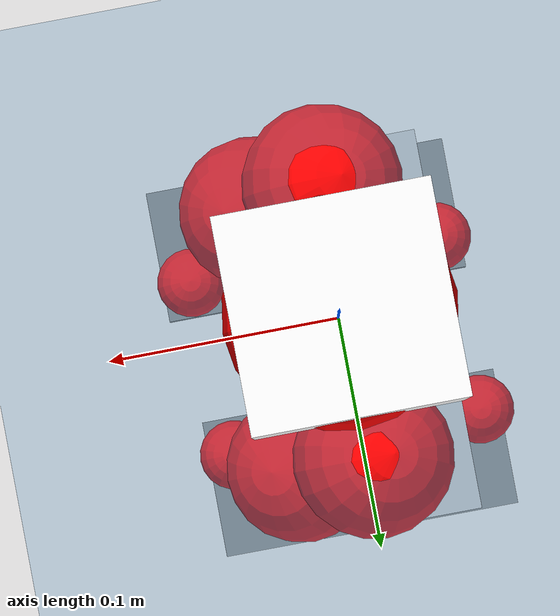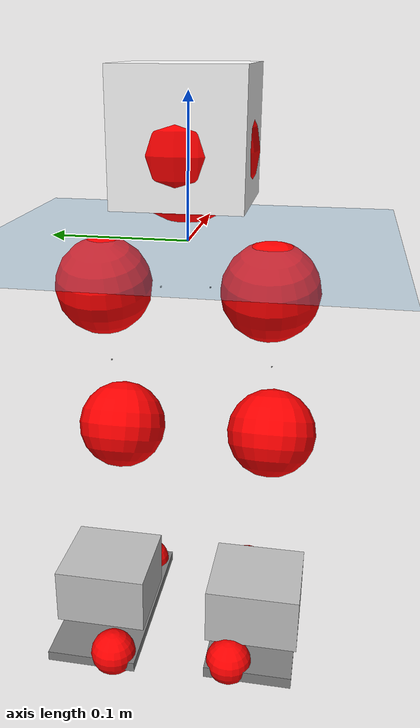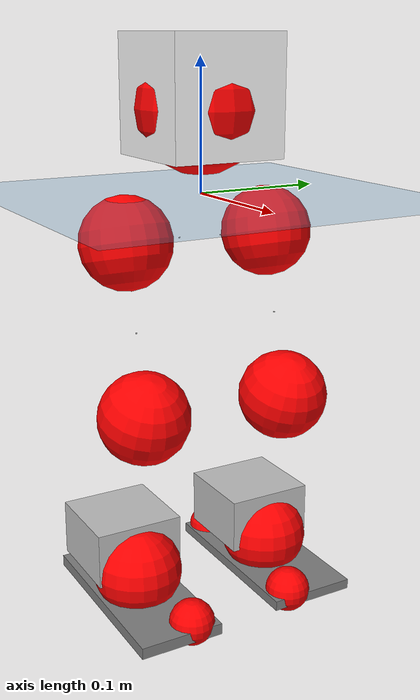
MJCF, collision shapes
<mujoco model="pi_12dof_release_v1">
  <compiler angle="radian" assetdir="assets" balanceinertia="true" inertiafromgeom="false"/>

  <option timestep="0.005" density="1.2" viscosity="2e-05"/>

  <size nkey="1"/>

  <visual>
    <quality shadowsize="8192"/>
    <map shadowclip="0.5"/>
  </visual>

  <default>
    <default class="/">
      <joint armature="0.01" damping="0.01" frictionloss="0.01"/>
      <geom contype="0" conaffinity="0" group="1" solref="-1000 -80"/>
      <site size="0.01 0.005 0.005" group="5"/>
      <general forcelimited="true" biastype="affine" gainprm="20" biasprm="0 -20 -0.5"/>
      <default class="foot">
        <geom size="0.0845 0.036 0.005" type="box" condim="6" group="4" priority="1" friction="0.9 0.2 0.2" solimp="0.015 1 0.005"/>
      </default>
      <default class="reward_collision_sphere">
        <geom group="5" rgba="1 0 0 1"/>
      </default>
    </default>
  </default>

  <asset>
    <texture type="skybox" colorspace="auto" name="//unnamed_texture_0" builtin="gradient" rgb1="0.95 0.95 0.95" rgb2="0.95 0.95 0.95" width="100" height="600"/>
    <texture type="2d" colorspace="auto" name="texplane" builtin="checker" rgb1="0.345 0.575 0.748" rgb2="0.345 0.575 0.748" markrgb="1 1 1" width="512" height="512"/>
    <material name="MatPlane" class="/" texture="texplane" texuniform="true" texrepeat="2 2" specular="0.9"/>
    <mesh name="baselink_1" class="/" file="baselink_1.STL"/>
    <mesh name="r_hip_pitch_link" class="/" file="r_hip_pitch_link.STL"/>
    <mesh name="r_hip_roll_link" class="/" file="r_hip_roll_link.STL"/>
    <mesh name="r_thigh_link" class="/" file="r_thigh_link.STL"/>
    <mesh name="r_calf_link" class="/" file="r_calf_link.STL"/>
    <mesh name="r_ankle_pitch_link" class="/" file="r_ankle_pitch_link.STL"/>
    <mesh name="r_ankle_roll_link" class="/" file="r_ankle_roll_link.STL"/>
    <mesh name="l_hip_pitch_link" class="/" file="l_hip_pitch_link.STL"/>
    <mesh name="l_hip_roll_link" class="/" file="l_hip_roll_link.STL"/>
    <mesh name="l_thigh_link" class="/" file="l_thigh_link.STL"/>
    <mesh name="l_calf_link" class="/" file="l_calf_link.STL"/>
    <mesh name="l_ankle_pitch_link" class="/" file="l_ankle_pitch_link.STL"/>
    <mesh name="l_ankle_roll_link" class="/" file="l_ankle_roll_link.STL"/>
  </asset>

  <worldbody>
    <geom name="floor" class="/" size="100 100 0.125" type="plane" group="0" material="MatPlane"/>
    <light name="toplight_shadow" class="/" pos="0 0 5" dir="0.0990148 0.0990148 -0.990148" type="directional" ambient="0.04 0.04 0.04" diffuse="0.55 0.55 0.55" specular="0.12 0.12 0.12"/>
    <light name="toplight_fill" class="/" pos="0 0 5" dir="0.0990148 0.0990148 -0.990148" type="directional" castshadow="false" ambient="0.04 0.04 0.04" diffuse="0.3 0.3 0.3" specular="0.08 0.08 0.08"/>
    <body name="trunk" pos="-0.000361323 0.000201155 -0.00224797" quat="1 0.00029771 4.96875e-05 0.000125953">
      <inertial pos="-0.000389886 -0.00338822 0.0382262" quat="0.695104 0.00908107 0.0101605 0.71878" mass="1.54955" diaginertia="0.00822166 0.00296574 0.00303861"/>
      <joint name="//unnamed_joint_0" type="free"/>
      <geom name="//unnamed_geom_1" class="/" type="mesh" density="0" rgba="1 1 1 1" mesh="baselink_1"/>
      <geom name="//unnamed_geom_2" class="/" size="0.044737 0.044737 0.044737" pos="0 0 0.074521" type="box" rgba="1 1 1 1"/>
      <geom name="//unnamed_geom_3" class="reward_collision_sphere" size="0.0492107" pos="0 0 0.0652059"/>
      <site name="imu" class="/" pos="-0.0127601 0.0045474 0.0137963" size="0.00894739"/>
      <camera name="track" class="/" pos="0 -1.59029 0" quat="0.707107 0.707107 0 0" mode="trackcom"/>
      <camera name="ego_camera" class="/" pos="0.0718168 0 0.167672" quat="-0.5 -0.5 0.5 0.5"/>
      <body name="r_hip_pitch_link" pos="-0.00231597 -0.0172157 -0.0301897" quat="0.992271 -0.000409755 -0.12409 0.000313519">
        <inertial pos="0.00373966 -0.0461598 -5.5865e-05" quat="-0.0123105 0.7053 -0.033454 0.708013" mass="0.254474" diaginertia="8.3932e-05 3.0863e-05 5.7668e-05"/>
        <joint name="r_hip_pitch_joint" class="/" pos="0 0 0" axis="0.00706958 -0.999945 -0.00777025" stiffness="0.0105258" range="-1.74765 1.19505" armature="0.00867956" damping="0.000516079" frictionloss="0.00903242"/>
        <geom name="//unnamed_geom_4" class="/" type="mesh" density="0" rgba="0.75294 0.75294 0.75294 1" mesh="r_hip_pitch_link"/>
        <geom name="//unnamed_geom_5" class="/" size="0.00044737 0.00044737 0.00044737" type="box" rgba="0.75294 0.75294 0.75294 1"/>
        <body name="r_hip_roll_link" pos="-0.00187347 -0.0435601 0.000115715" quat="1 6.13536e-06 -5.06953e-05 9.97283e-05">
          <inertial pos="-0.000359116 -0.000419839 -0.0543446" quat="0.706148 -0.0813732 -0.0797005 0.698843" mass="0.284674" diaginertia="0.000259893 8.83494e-05 9.13213e-05"/>
          <joint name="r_hip_roll_joint" class="/" pos="0 0 0" axis="-0.99993 0.0114055 -0.00308861" stiffness="0.000998686" range="-0.17575 0.494551" armature="0.00873018" damping="0.010897" frictionloss="0.0100314"/>
          <geom name="//unnamed_geom_6" class="/" type="mesh" density="0" rgba="0.75294 0.75294 0.75294 1" mesh="r_hip_roll_link"/>
          <geom name="//unnamed_geom_7" class="/" size="0.00044737 0.00044737 0.00044737" type="box" rgba="0.75294 0.75294 0.75294 1"/>
          <geom name="//unnamed_geom_8" class="reward_collision_sphere" size="0.0357896"/>
          <body name="r_thigh_link" pos="0.00239138 -0.00202895 -0.0668803" quat="0.999999 2.44814e-05 0.000968912 -0.000763787">
            <inertial pos="0.00103696 0.00126114 -0.0433911" quat="0.739364 0.6733 -0.00285841 -0.00051205" mass="0.0789319" diaginertia="9.86935e-05 2.99118e-05 4.04414e-05"/>
            <joint name="r_thigh_joint" class="/" pos="0 0 0" axis="-0.0117263 -0.00544447 -0.999916" stiffness="0.00110743" range="-0.303667 0.588083" armature="0.00875949" damping="0.000833413" frictionloss="0.0084868"/>
            <geom name="//unnamed_geom_9" class="/" type="mesh" density="0" rgba="0.75294 0.75294 0.75294 1" mesh="r_thigh_link"/>
            <geom name="//unnamed_geom_10" class="/" size="0.00044737 0.00044737 0.00044737" type="box" rgba="0.75294 0.75294 0.75294 1"/>
            <body name="r_calf_link" pos="-0.00236485 -0.00125451 -0.063992" quat="0.947613 0.000144548 0.319421 3.556e-05">
              <inertial pos="0.00237603 -0.000912648 -0.0649467" quat="0.99998 -0.0048924 -0.00061379 0.00400318" mass="0.603099" diaginertia="0.00287891 0.00116008 0.00012558"/>
              <joint name="r_calf_joint" class="/" pos="0 0 0" axis="0.000758767 -0.999979 -0.00648477" range="-1.64616 0.676392" armature="0.00802667" damping="0.0181633" frictionloss="0.00849798"/>
              <geom name="//unnamed_geom_11" class="/" type="mesh" density="0" rgba="0.75294 0.75294 0.75294 1" mesh="r_calf_link"/>
              <geom name="//unnamed_geom_12" class="/" size="0.00044737 0.00044737 0.00044737" type="box" rgba="0.75294 0.75294 0.75294 1"/>
              <geom name="//unnamed_geom_13" class="reward_collision_sphere" size="0.0357896"/>
              <body name="r_ankle_pitch_link" pos="-0.000144005 0.00267813 -0.131651" quat="0.980078 1.92456e-05 -0.198612 -0.000197768">
                <inertial pos="0.00467462 0.00180086 0.000141627" quat="0.00580954 0.714205 0.0063113 0.699884" mass="0.117885" diaginertia="0.000238605 6.99237e-05 8.21964e-05"/>
                <joint name="r_ankle_pitch_joint" class="/" pos="0 0 0" axis="-0.00442097 -0.999988 0.00215911" range="-1.2786 0.47845" armature="0.0094137" damping="0" frictionloss="0.00888798"/>
                <geom name="//unnamed_geom_14" class="/" type="mesh" density="0" rgba="0.75294 0.75294 0.75294 1" mesh="r_ankle_pitch_link"/>
                <geom name="//unnamed_geom_15" class="/" size="0.0348948 0.0357896 0.0223685" type="box" rgba="0.75294 0.75294 0.75294 1"/>
                <body name="r_ankle_roll_link" pos="0.0764678 0.000263554 0.00061984" quat="1 6.51407e-05 -8.9485e-06 -4.33019e-05">
                  <inertial pos="-0.0228343 -0.000324036 -0.0107717" quat="0.555544 0.42717 0.436327 0.564371" mass="0.375823" diaginertia="0.000880603 0.000316768 0.000199012"/>
                  <joint name="r_ankle_roll_joint" class="/" pos="0 0 0" axis="-1 -0.000122507 6.73154e-05" range="-0.19465 0.157539" armature="0.00884876" damping="0" frictionloss="0.0101733"/>
                  <geom name="//unnamed_geom_16" class="/" type="mesh" density="0" rgba="0.75294 0.75294 0.75294 1" mesh="r_ankle_roll_link"/>
                  <geom name="//unnamed_geom_17" class="/" type="mesh" rgba="0.75294 0.75294 0.75294 1" mesh="r_ankle_roll_link"/>
                  <geom name="right_foot" class="foot" size="0.0780922 0.0338465 0.00455915" pos="-0.0488354 0 -0.0409866"/>
                  <geom name="//unnamed_geom_19" class="reward_collision_sphere" size="0.0357896" pos="-0.0478779 0 -0.0186303"/>
                  <geom name="//unnamed_geom_20" class="reward_collision_sphere" size="0.0178948" pos="0.0143634 0.0159029 -0.0372605"/>
                  <geom name="//unnamed_geom_21" class="reward_collision_sphere" size="0.0178948" pos="-0.114907 0.0159029 -0.0372605"/>
                  <site name="right_foot" class="foot" pos="-0.0488354 0 -0.0409866" size="0.00894739"/>
                </body>
              </body>
            </body>
          </body>
        </body>
      </body>
      <body name="l_hip_pitch_link" pos="-0.00259936 0.0189096 -0.0314648" quat="0.992222 2.0473e-05 -0.124485 -4.32585e-05">
        <inertial pos="0.00175982 0.0454098 0.000293146" quat="-0.0316102 0.709474 0.027465 0.703486" mass="0.277943" diaginertia="0.000100044 3.33349e-05 6.5878e-05"/>
        <joint name="l_hip_pitch_joint" class="/" pos="0 0 0" axis="-0.00792911 0.999938 0.00783669" range="-1.30299 1.72674" armature="0.0101376" damping="0.00191643" frictionloss="0.00942702"/>
        <geom name="//unnamed_geom_22" class="/" type="mesh" density="0" rgba="0.75294 0.75294 0.75294 1" mesh="l_hip_pitch_link"/>
        <geom name="//unnamed_geom_23" class="/" size="0.00044737 0.00044737 0.00044737" type="box" rgba="0.75294 0.75294 0.75294 1"/>
        <body name="l_hip_roll_link" pos="-0.00154406 0.0424027 -0.000401614" quat="1 0.000202393 -0.00011674 -1.39697e-06">
          <inertial pos="-0.0016156 0.00249377 -0.0557493" quat="0.699933 -0.0748622 -0.0781751 0.705959" mass="0.278489" diaginertia="0.000267173 8.61854e-05 8.93997e-05"/>
          <joint name="l_hip_roll_joint" class="/" pos="0 0 0" axis="-0.999899 0.0127846 0.00621308" range="-0.448684 0.154371" armature="0.00853831" damping="0.00200393" frictionloss="0.00771442"/>
          <geom name="//unnamed_geom_24" class="/" type="mesh" density="0" rgba="0.75294 0.75294 0.75294 1" mesh="l_hip_roll_link"/>
          <geom name="//unnamed_geom_25" class="/" size="0.00044737 0.00044737 0.00044737" type="box" rgba="0.75294 0.75294 0.75294 1"/>
          <geom name="//unnamed_geom_26" class="reward_collision_sphere" size="0.0357896"/>
          <body name="l_thigh_link" pos="-0.00182888 0.000248534 -0.0654732" quat="1 5.95481e-05 2.4075e-05 1.74752e-05">
            <inertial pos="0.000583135 -0.00183868 -0.0445069" quat="0.680416 0.732765 -0.00231177 0.00916744" mass="0.0806176" diaginertia="0.000100503 2.97628e-05 3.92856e-05"/>
            <joint name="l_thigh_joint" class="/" pos="0 0 0" axis="-9.21511e-06 0.000246767 -1" range="-0.636963 0.332806" armature="0.00943895" damping="0" frictionloss="0.00980467"/>
            <geom name="//unnamed_geom_27" class="/" type="mesh" density="0" rgba="0.75294 0.75294 0.75294 1" mesh="l_thigh_link"/>
            <geom name="//unnamed_geom_28" class="/" size="0.00044737 0.00044737 0.00044737" type="box" rgba="0.75294 0.75294 0.75294 1"/>
            <body name="l_calf_link" pos="0.00139255 -0.00219601 -0.0668347" quat="0.947526 0.000665539 0.319677 -0.00110563">
              <inertial pos="-0.00240308 0.00190972 -0.0626176" quat="0.999973 0.00269399 0.00344016 0.00583075" mass="0.574047" diaginertia="0.00279474 0.0010988 0.000116774"/>
              <joint name="l_calf_joint" class="/" pos="0 0 0" axis="-0.00041624 1 -0.000743391" range="-0.650436 1.60597" armature="0.00774673" damping="0.00796809" frictionloss="0.00771322"/>
              <geom name="//unnamed_geom_29" class="/" type="mesh" density="0" rgba="0.75294 0.75294 0.75294 1" mesh="l_calf_link"/>
              <geom name="//unnamed_geom_30" class="/" size="0.00044737 0.00044737 0.00044737" type="box" rgba="0.75294 0.75294 0.75294 1"/>
              <geom name="//unnamed_geom_31" class="reward_collision_sphere" size="0.0357896"/>
              <body name="l_ankle_pitch_link" pos="-8.92234e-05 0.000372087 -0.127964" quat="0.980067 5.69178e-06 -0.198667 3.20156e-06">
                <inertial pos="0.0071206 0.000205353 -0.00091561" quat="-0.00269514 0.70733 0.00171573 0.706876" mass="0.118172" diaginertia="0.000231985 6.87844e-05 8.0436e-05"/>
                <joint name="l_ankle_pitch_joint" class="/" pos="0 0 0" axis="0.00596415 0.999927 -0.0105485" stiffness="0.000607375" range="-0.512185 1.30443" armature="0.00905658" damping="0" frictionloss="0.00997294"/>
                <geom name="//unnamed_geom_32" class="/" type="mesh" density="0" rgba="0.75294 0.75294 0.75294 1" mesh="l_ankle_pitch_link"/>
                <geom name="//unnamed_geom_33" class="/" size="0.0348948 0.0357896 0.0223685" type="box" rgba="0.75294 0.75294 0.75294 1"/>
                <body name="l_ankle_roll_link" pos="0.0690576 0.00229694 -0.000767443" quat="1 -0.0003171 -0.000298964 -0.000276335">
                  <inertial pos="-0.0239857 -0.000552673 -0.0131202" quat="0.550275 0.428362 0.437524 0.567694" mass="0.36735" diaginertia="0.00089217 0.000338073 0.000199332"/>
                  <joint name="l_ankle_roll_joint" class="/" pos="0 0 0" axis="-0.999999 -0.000985673 -0.000612511" range="-0.14753 0.153908" armature="0.00914625" damping="0.00604288" frictionloss="0.0077569"/>
                  <geom name="//unnamed_geom_34" class="/" type="mesh" density="0" rgba="0.75294 0.75294 0.75294 1" mesh="l_ankle_roll_link"/>
                  <geom name="//unnamed_geom_35" class="/" type="mesh" rgba="0.75294 0.75294 0.75294 1" mesh="l_ankle_roll_link"/>
                  <geom name="left_foot" class="foot" size="0.0766033 0.0352359 0.003983" pos="-0.0488354 0 -0.0409866"/>
                  <geom name="//unnamed_geom_37" class="reward_collision_sphere" size="0.0357896" pos="-0.0478779 0 -0.0186303"/>
                  <geom name="//unnamed_geom_38" class="reward_collision_sphere" size="0.0178948" pos="0.0143634 -0.0159029 -0.0372605"/>
                  <geom name="//unnamed_geom_39" class="reward_collision_sphere" size="0.0178948" pos="-0.114907 -0.0159029 -0.0372605"/>
                  <site name="left_foot" class="foot" pos="-0.0488354 0 -0.0409866" size="0.00894739"/>
                </body>
              </body>
            </body>
          </body>
        </body>
      </body>
    </body>
  </worldbody>

  <contact>
    <pair class="/" geom1="floor" geom2="right_foot" name="//unnamed_contact_1"/>
    <pair class="/" geom1="floor" geom2="left_foot" name="//unnamed_contact_0"/>
  </contact>

  <actuator>
    <general name="r_hip_pitch_joint" class="/" joint="r_hip_pitch_joint" forcerange="-18.7545 18.7545" gainprm="18.2828" biasprm="0 -18.2828 -0.478204"/>
    <general name="r_hip_roll_joint" class="/" joint="r_hip_roll_joint" forcerange="-16.9053 16.9053" gainprm="18.2828" biasprm="0 -18.2828 -0.478204"/>
    <general name="r_thigh_joint" class="/" joint="r_thigh_joint" forcerange="-20.5867 20.5867" gainprm="18.2828" biasprm="0 -18.2828 -0.478204"/>
    <general name="r_calf_joint" class="/" joint="r_calf_joint" forcerange="-18.349 18.349" gainprm="18.2828" biasprm="0 -18.2828 -0.478204"/>
    <general name="r_ankle_pitch_joint" class="/" joint="r_ankle_pitch_joint" forcerange="-16.8846 16.8846" gainprm="18.2828" biasprm="0 -18.2828 -0.478204"/>
    <general name="r_ankle_roll_joint" class="/" joint="r_ankle_roll_joint" forcerange="-18.8511 18.8511" gainprm="18.2828" biasprm="0 -18.2828 -0.478204"/>
    <general name="l_hip_pitch_joint" class="/" joint="l_hip_pitch_joint" forcerange="-19.435 19.435" gainprm="18.2828" biasprm="0 -18.2828 -0.478204"/>
    <general name="l_hip_roll_joint" class="/" joint="l_hip_roll_joint" forcerange="-17.7396 17.7396" gainprm="18.2828" biasprm="0 -18.2828 -0.478204"/>
    <general name="l_thigh_joint" class="/" joint="l_thigh_joint" forcerange="-19.3998 19.3998" gainprm="18.2828" biasprm="0 -18.2828 -0.478204"/>
    <general name="l_calf_joint" class="/" joint="l_calf_joint" forcerange="-17.4844 17.4844" gainprm="18.2828" biasprm="0 -18.2828 -0.478204"/>
    <general name="l_ankle_pitch_joint" class="/" joint="l_ankle_pitch_joint" forcerange="-19.2692 19.2692" gainprm="18.2828" biasprm="0 -18.2828 -0.478204"/>
    <general name="l_ankle_roll_joint" class="/" joint="l_ankle_roll_joint" forcerange="-16.8447 16.8447" gainprm="18.2828" biasprm="0 -18.2828 -0.478204"/>
  </actuator>

  <sensor>
    <gyro site="imu" name="imu_angular_velocity"/>
    <velocimeter site="imu" name="imu_linear_velocity"/>
    <framelinvel objtype="site" objname="left_foot" name="left_foot_global_linear_velocity"/>
    <framelinvel objtype="site" objname="right_foot" name="right_foot_global_linear_velocity"/>
  </sensor>

  <keyframe>
    <key name="home" qpos="0 0 0.291 1 0 0 0 0.4 0 0 -0.8 0.4 0 -0.4 0 0 0.8 -0.4 0"/>
  </keyframe>
</mujoco>
